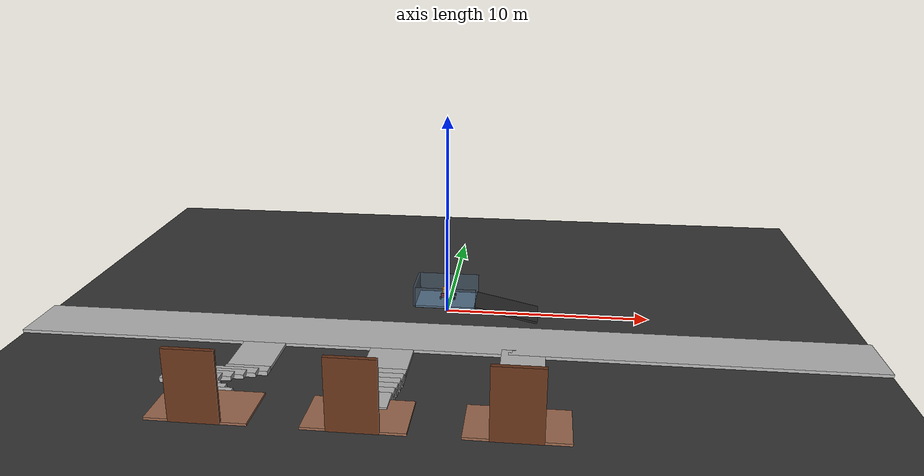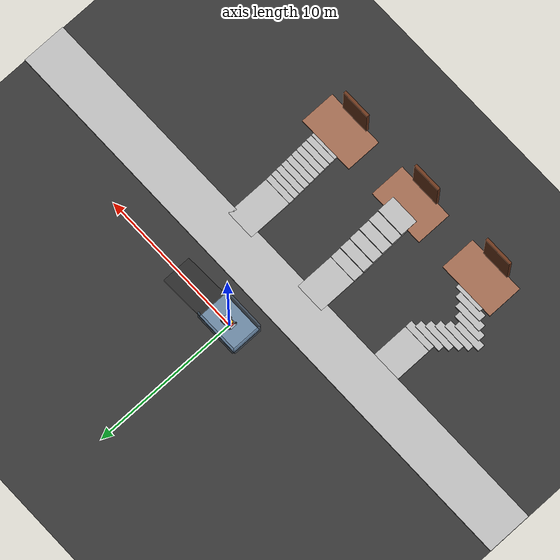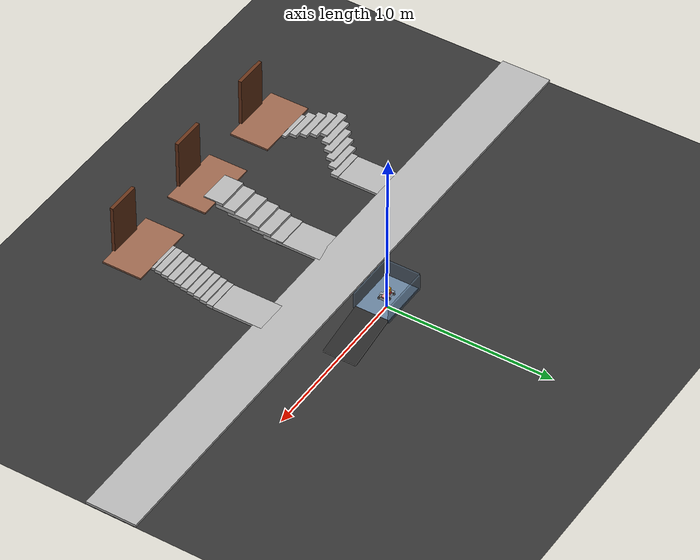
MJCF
<mujoco model="RAY_Scenario_4">
  <compiler autolimits="true"/>
  <asset>
    <texture name="grid" type="2d" builtin="checker" width="512" height="512" rgb1=".1 .2 .3" rgb2=".2 .3 .4"/>
    <material name="grid" texture="grid" texrepeat="1 1" texuniform="true" reflectance=".2"/>
    <texture name="concrete" type="2d" builtin="flat" rgb1=".7 .7 .7" width="512" height="512"/>
    <material name="concrete" texture="concrete" reflectance=".1"/>
    <texture name="metal" type="2d" builtin="flat" rgb1=".4 .5 .6" width="512" height="512"/>
    <material name="metal" texture="metal" reflectance=".5"/>
    <texture name="asphalt" type="2d" builtin="flat" rgb1=".2 .2 .2" width="512" height="512"/>
    <material name="asphalt" texture="asphalt" reflectance=".1"/>
    <texture name="grip_tape" type="2d" builtin="checker" width="512" height="512" rgb1=".1 .1 .1" rgb2=".2 .2 .2"/>
    <material name="ramp_surface" texture="grip_tape" texrepeat="2 2" reflectance="0"/>
    <texture name="wood" type="2d" builtin="flat" rgb1=".6 .4 .3" width="512" height="512"/>
    <material name="wood" texture="wood" reflectance=".1"/>
    <mesh name="chassis" file="assets/chassis.stl" scale="0.001 0.001 0.001"/>
  </asset>

  <default>
    <joint damping="0.5"/>
    <default class="wheel">
      <geom type="cylinder" size=".06 .05" rgba="0.2 0.2 0.2 1" euler="90 0 0" condim="3" friction="2.5 0.005 0.0001"/>
      <joint type="hinge" axis="0 1 0"/>
    </default>
    <default class="skid_plate">
        <geom type="capsule" size=".055" rgba="0.3 0.3 0.3 1" condim="3" friction="0.8 0.005 0.0001"/>
    </default>
  </default>

  <worldbody>
    <light pos="0 0 10" dir="0 0 -1" directional="true"/>

    <geom name="street" type="plane" size="20 20 .1" material="asphalt"/>
    <body name="van" pos="0 0 0.6">
        <geom type="box" size="1.5 1 0.05" material="metal"/>
        <geom type="box" size="1.5 .05 0.5" pos="0 1.05 0.5" material="metal" rgba=".3 .4 .5 0.5"/>
        <geom type="box" size="1.5 .05 0.5" pos="0 -1.05 0.5" material="metal" rgba=".3 .4 .5 0.5"/>
        <geom type="box" size=".05 1 0.5" pos="-1.55 0 0.5" material="metal" rgba=".3 .4 .5 0.5"/>
    </body>
    <body name="ramp" pos="3.0 0 0.32">
        <geom type="box" size="1.6 1 0.05" euler="0 12 0" material="ramp_surface" friction="2.0 0.005 0.0001"/>
    </body>
    <body name="sidewalk" pos="0 -3.5 0.075">
        <geom type="box" size="20 1.5 0.075" material="concrete"/>
    </body>

        <body name="path_0" pos="4 -6 0.075">
            <geom type="box" size="1 1.5 0.075" material="concrete"/>
        </body>
        <geom name="s0_0" type="box" size="1 .2 .1" pos="4 -7.70 0.10" material="concrete"/>
<geom name="s0_1" type="box" size="1 .2 .1" pos="4 -8.10 0.20" material="concrete"/>
<geom name="s0_2" type="box" size="1 .2 .1" pos="4 -8.50 0.30" material="concrete"/>
<geom name="s0_3" type="box" size="1 .2 .1" pos="4 -8.90 0.40" material="concrete"/>
<geom name="s0_4" type="box" size="1 .2 .1" pos="4 -9.30 0.50" material="concrete"/>
<geom name="s0_5" type="box" size="1 .2 .1" pos="4 -9.70 0.60" material="concrete"/>
<geom name="s0_6" type="box" size="1 .2 .1" pos="4 -10.10 0.70" material="concrete"/>
<geom name="s0_7" type="box" size="1 .2 .1" pos="4 -10.50 0.80" material="concrete"/>
<geom name="s0_8" type="box" size="1 .2 .1" pos="4 -10.90 0.90" material="concrete"/>
<geom name="s0_9" type="box" size="1 .2 .075" pos="4 -11.30 0.97" material="concrete"/>

        <body name="porch_0" pos="4 -12.5 1.0">
            <geom type="box" size="2 1.2 0.05" material="wood"/>
            <geom type="box" size="1 .1 1.5" pos="0 -1.2 1.5" rgba=".4 .2 .1 1"/>
        </body>

        <body name="path_1" pos="-2 -6 0.075">
            <geom type="box" size="1 1.5 0.075" material="concrete"/>
        </body>
        <geom name="s1_0" type="box" size="1 .6 .125" pos="-2 -7.70 0.10" material="concrete"/>
<geom name="s1_1" type="box" size="1 .6 .125" pos="-2 -8.45 0.28" material="concrete"/>
<geom name="s1_2" type="box" size="1 .6 .125" pos="-2 -9.20 0.46" material="concrete"/>
<geom name="s1_3" type="box" size="1 .6 .125" pos="-2 -9.95 0.64" material="concrete"/>
<geom name="s1_4" type="box" size="1 .6 .125" pos="-2 -10.70 0.82" material="concrete"/>
<geom name="s1_5" type="box" size="1 .6 .125" pos="-2 -11.45 1.00" material="concrete"/>

        <body name="porch_1" pos="-2 -12.5 1.0">
            <geom type="box" size="2 1.2 0.05" material="wood"/>
            <geom type="box" size="1 .1 1.5" pos="0 -1.2 1.5" rgba=".4 .2 .1 1"/>
        </body>

        <body name="path_2" pos="-8 -6 0.075">
            <geom type="box" size="1 1.5 0.075" material="concrete"/>
        </body>
        <geom name="s2_0" type="box" size="1 .25 .1" pos="-8.00 -7.70 0.10" material="concrete"/>
<geom name="s2_1" type="box" size="1 .25 .1" pos="-8.40 -8.10 0.20" material="concrete"/>
<geom name="s2_2" type="box" size="1 .25 .1" pos="-8.80 -8.50 0.30" material="concrete"/>
<geom name="s2_3" type="box" size="1 .25 .1" pos="-9.20 -8.90 0.40" material="concrete"/>
<geom name="s2_4" type="box" size="1 .25 .1" pos="-9.60 -9.30 0.50" material="concrete"/>
<geom name="s2_5" type="box" size="1 .25 .1" pos="-10.00 -9.70 0.60" material="concrete"/>
<geom name="s2_6" type="box" size="1 .25 .1" pos="-9.60 -10.10 0.70" material="concrete"/>
<geom name="s2_7" type="box" size="1 .25 .1" pos="-9.20 -10.50 0.80" material="concrete"/>
<geom name="s2_8" type="box" size="1 .25 .1" pos="-8.80 -10.90 0.90" material="concrete"/>
<geom name="s2_9" type="box" size="1 .25 .075" pos="-8.40 -11.30 0.97" material="concrete"/>

        <body name="porch_2" pos="-8 -12.5 1.0">
            <geom type="box" size="2 1.2 0.05" material="wood"/>
            <geom type="box" size="1 .1 1.5" pos="0 -1.2 1.5" rgba=".4 .2 .1 1"/>
        </body>

    <body name="car" pos="0 0 0.8">
      <freejoint/>
      <inertial pos="0.1 0 0" mass="10" diaginertia="0.5 0.5 0.8"/>

      <geom name="chassis_visual" type="mesh" mesh="chassis" pos="-0.405 0.275 -0.05" euler="90 0 0"
            density="0" contype="0" conaffinity="0" group="1" rgba="1 1 1 0.5"/>
      <geom name="belly" type="box" size=".3 .15 .04" pos="0 0 0.05" rgba=".8 .2 .2 1"/>

      <site name="sens_chassis" pos="0 0 0.2" size=".02" rgba="1 0 0 1"/>

      <body name="laser_array" pos="0.25 0 0">
        <site name="laser_1_site" pos="0.2 0 0.05" euler="0 135 0" size=".01" rgba="1 0 0 1"/>
        <site name="laser_2_site" pos="0.2 0 0.15" euler="0 135 0" size=".01" rgba="1 0 0 1"/>
        <site name="laser_3_site" pos="0 0 0.35" euler="0 90 0" size=".01" rgba="1 0 0 1"/>
      </body>
      <body name="leveling_base" pos="-0.1 0 0.15">
        <joint name="bin_pitch" axis="0 1 0" damping="10.0" range="-60 60"/>
        <geom type="cylinder" size=".03 .12" euler="90 0 0" rgba=".2 .2 .2 1"/>
        <geom name="platform_flat" type="box" size=".14 .14 .01" pos="0 0 0.04" rgba=".3 .3 .3 1"/>
        <body name="the_bin" pos="0 0 0.05">
            <inertial pos="0 0 0.1" mass="8" diaginertia="0.1 0.1 0.1"/>
            <geom name="bin_visual" type="box" size=".13 .13 .12" pos="0 0 0.12" rgba="1 .6 0 1"/>
        </body>
      </body>

      <body name="left_bogie" pos="0.25 .25 0">
        <joint name="climb_L" axis="0 1 0" damping="50.0"/>
        <site name="sens_bogie" pos="0.1 0 0" size=".02" rgba="0 1 0 1"/>
        <geom type="box" size=".15 .04 .01" pos="0 .03 0" rgba="0.5 0.5 0.5 1"/>
        <geom class="skid_plate" fromto=".13 0 0 -.13 0 0"/>
        <body name="L_Front" pos=".13 0 0"> <joint name="L1" class="wheel"/> <geom class="wheel"/> </body>
        <body name="L_Mid" pos="-.13 0 0"> <joint name="L2" class="wheel"/> <geom class="wheel"/> </body>
      </body>
      <body name="left_wheel_rear" pos="-0.3 0.25 0"> <joint name="L3" class="wheel"/> <geom class="wheel"/> </body>

      <body name="right_bogie" pos="0.25 -.25 0">
        <joint name="climb_R" axis="0 1 0" damping="50.0"/>
        <geom type="box" size=".15 .04 .01" pos="0 -.03 0" rgba="0.5 0.5 0.5 1"/>
        <geom class="skid_plate" fromto=".13 0 0 -.13 0 0"/>
        <body name="R_Front" pos=".13 0 0"> <joint name="R1" class="wheel"/> <geom class="wheel"/> </body>
        <body name="R_Mid" pos="-.13 0 0"> <joint name="R2" class="wheel"/> <geom class="wheel"/> </body>
      </body>
      <body name="right_wheel_rear" pos="-0.3 -.25 0"> <joint name="R3" class="wheel"/> <geom class="wheel"/> </body>
    </body>

  </worldbody>

  <tendon>
    <fixed name="forward_combined">
        <joint joint="L1" coef="0.5"/> <joint joint="L2" coef="0.5"/> <joint joint="L3" coef="0.5"/>
        <joint joint="R1" coef="0.5"/> <joint joint="R2" coef="0.5"/> <joint joint="R3" coef="0.5"/>
    </fixed>
    <fixed name="turn_combined">
        <joint joint="L1" coef="-0.5"/> <joint joint="L2" coef="-0.5"/> <joint joint="L3" coef="-0.5"/>
        <joint joint="R1" coef="0.5"/> <joint joint="R2" coef="0.5"/> <joint joint="R3" coef="0.5"/>
    </fixed>

    <fixed name="climb_axle">
      <joint joint="climb_L" coef="1"/> <joint joint="climb_R" coef="1"/>
    </fixed>
  </tendon>
  <equality>
      <joint joint1="climb_L" joint2="climb_R" polycoef="0 1 0 0 0" solimp="0.99 0.99 0.01" solref="0.005 1"/>
  </equality>
  <actuator>
    <motor name="drive_forward" tendon="forward_combined" ctrlrange="-1 1" gear="40"/>
    <motor name="drive_turn" tendon="turn_combined" ctrlrange="-1 1" gear="40"/>
    <position name="actuator_climb" joint="climb_L" ctrlrange="-1.5 1.5" kp="3000" forcerange="-400 400"/>

    <position name="level_bin" joint="bin_pitch" ctrlrange="-1 1" kp="500"/>
  </actuator>

  <sensor>
    <jointpos name="sensor_bin_angle" joint="bin_pitch"/>

    <actuatorpos name="sensor_bogie_angle" actuator="actuator_climb"/>

    <framequat name="sensor_chassis_quat" objtype="site" objname="sens_chassis"/>
    <gyro name="sensor_chassis_gyro" site="sens_chassis"/>

    <rangefinder name="floor_sensL" site="laser_1_site"/>
    <rangefinder name="floor_sensU" site="laser_2_site"/>
    <rangefinder name="wall_sens" site="laser_3_site"/>
  </sensor>
<size nuserdata='2'/>

</mujoco>
